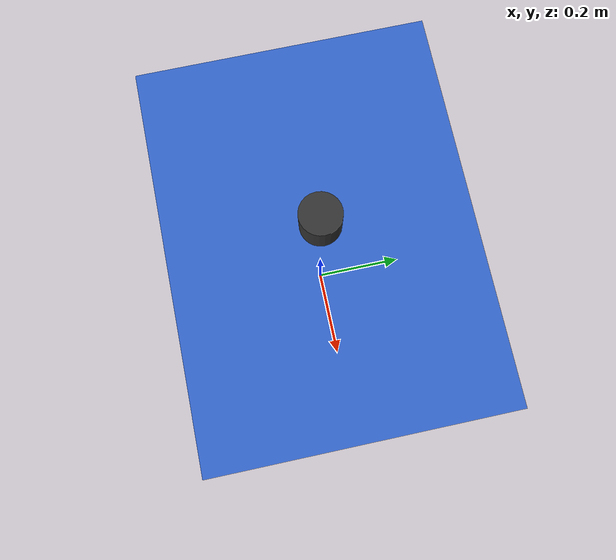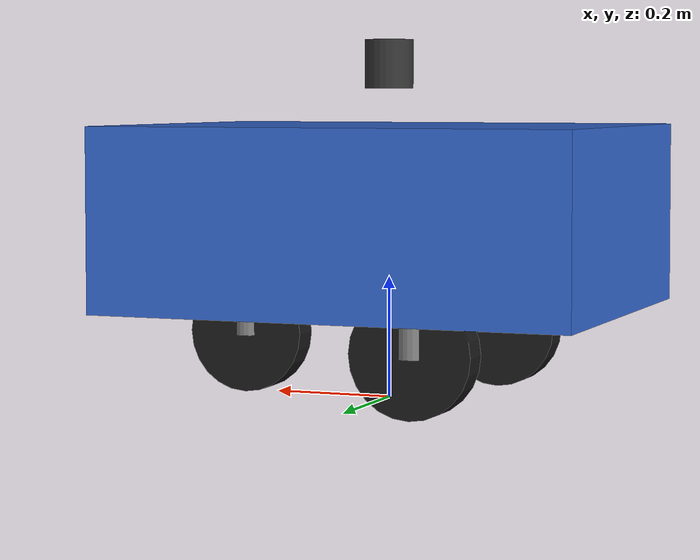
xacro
<?xml version="1.0"?>
<robot xmlns:xacro="http://www.ros.org/wiki/xacro" name="triple_steer_robot">

  <!-- ==================== Global Properties ==================== -->
  <xacro:property name="base_length" value="0.8" />
  <xacro:property name="base_width" value="0.6" />
  <xacro:property name="base_height" value="0.3" />
  <xacro:property name="base_mass" value="50.0" />
  <xacro:property name="wheel_radius" value="0.1" />
  <xacro:property name="wheel_width" value="0.05" />
  <xacro:property name="wheel_mass" value="2.0" />

  <!-- ==================== Includes ==================== -->
  <xacro:include filename="$(find triple_steer_robot)/urdf/robot_base.xacro" />
  <xacro:include filename="$(find triple_steer_robot)/urdf/sensors.xacro" />
  <xacro:include filename="$(find triple_steer_robot)/urdf/ros2_control.xacro" />

  <!-- ==================== Base Link ==================== -->
  <link name="base_footprint">
    <visual>
      <origin xyz="0 0 0" rpy="0 0 0" />
      <geometry>
        <box size="0.001 0.001 0.001" />
      </geometry>
    </visual>
  </link>

  <xacro:robot_base
    name="base_link"
    length="${base_length}"
    width="${base_width}"
    height="${base_height}"
    mass="${base_mass}"
    wheel_radius="${wheel_radius}"
    wheel_width="${wheel_width}"
    wheel_mass="${wheel_mass}" />

  <!-- base_link 中心离地高度 = wheel_radius + height/2 + ground_clearance(0.05) -->
  <xacro:property name="base_center_z" value="0.3" />

  <joint name="base_joint" type="fixed">
    <parent link="base_footprint" />
    <child link="base_link" />
    <origin xyz="0 0 ${base_center_z}" rpy="0 0 0" />
  </joint>

  <!-- ==================== Sensors ==================== -->
  <xacro:sensors parent="base_link" />

  <!-- ==================== ROS2 Control ==================== -->
  <xacro:ros2_control />

</robot>

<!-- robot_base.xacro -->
<robot xmlns:xacro="http://www.ros.org/wiki/xacro">

  <!--
    三舵轮底盘宏定义
    三个舵轮呈三角形/等边三角形分布，每个轮子可独立转向和驱动
  -->
  <xacro:macro name="robot_base" params="name length width height mass
                                          wheel_radius wheel_width wheel_mass">

    <link name="${name}">
      <visual>
        <origin xyz="0 0 0" rpy="0 0 0" />
        <geometry>
          <box size="${length} ${width} ${height}" />
        </geometry>
        <material name="blue">
          <color rgba="0.2 0.4 0.8 1.0" />
        </material>
      </visual>
      <collision>
        <origin xyz="0 0 0" rpy="0 0 0" />
        <geometry>
          <box size="${length} ${width} ${height}" />
        </geometry>
      </collision>
      <inertial>
        <origin xyz="0 0 0" rpy="0 0 0" />
        <mass value="${mass}" />
        <inertia
          ixx="${(1.0/12.0) * mass * (width*width + height*height)}"
          iyy="${(1.0/12.0) * mass * (length*length + height*height)}"
          izz="${(1.0/12.0) * mass * (length*length + width*width)}"
          ixy="0.0" ixz="0.0" iyz="0.0" />
      </inertial>
    </link>

    <!-- 等边三角形布局，中心到轮子距离 R=0.25m -->
    <xacro:property name="R" value="0.25" />
    <xacro:property name="sqrt3_2" value="0.86602540378" />

    <!-- steer_link 中心在 base_link 下方 0.18m，使其完全处于底盘下方 -->
    <xacro:property name="steer_z" value="-0.18" />

    <!-- ===== Front Steering Wheel ===== -->
    <xacro:steer_wheel
      name="front"
      parent="${name}"
      xyz="${R} 0 ${steer_z}"
      radius="${wheel_radius}"
      width="${wheel_width}"
      mass="${wheel_mass}"
    />

    <!-- ===== Left Steering Wheel ===== -->
    <xacro:steer_wheel
      name="left"
      parent="${name}"
      xyz="${-R/2} ${R*sqrt3_2} ${steer_z}"
      radius="${wheel_radius}"
      width="${wheel_width}"
      mass="${wheel_mass}"
    />

    <!-- ===== Right Steering Wheel ===== -->
    <xacro:steer_wheel
      name="right"
      parent="${name}"
      xyz="${-R/2} ${-R*sqrt3_2} ${steer_z}"
      radius="${wheel_radius}"
      width="${wheel_width}"
      mass="${wheel_mass}"
    />

    <!-- Gazebo colors -->
    <gazebo reference="${name}">
      <material>Gazebo/Blue</material>
    </gazebo>
    <gazebo reference="front_steer_link">
      <material>Gazebo/Orange</material>
    </gazebo>
    <gazebo reference="left_steer_link">
      <material>Gazebo/Yellow</material>
    </gazebo>
    <gazebo reference="right_steer_link">
      <material>Gazebo/Green</material>
    </gazebo>
    <gazebo reference="front_wheel_link">
      <material>Gazebo/Black</material>
    </gazebo>
    <gazebo reference="left_wheel_link">
      <material>Gazebo/Black</material>
    </gazebo>
    <gazebo reference="right_wheel_link">
      <material>Gazebo/Black</material>
    </gazebo>

  </xacro:macro>

  <!-- ==================== Steer Wheel Macro ==================== -->
  <xacro:macro name="steer_wheel" params="name parent xyz radius width mass">

    <!-- Steering link (rotation around Z) -->
    <link name="${name}_steer_link">
      <visual>
        <origin xyz="0 0 0" rpy="0 0 0" />
        <geometry>
          <cylinder radius="0.03" length="0.05" />
        </geometry>
        <material name="grey">
          <color rgba="0.5 0.5 0.5 1.0" />
        </material>
      </visual>
      <collision>
        <origin xyz="0 0 0" rpy="0 0 0" />
        <geometry>
          <cylinder radius="0.03" length="0.05" />
        </geometry>
      </collision>
      <inertial>
        <mass value="0.5" />
        <inertia ixx="0.0001" iyy="0.0001" izz="0.0001" ixy="0" ixz="0" iyz="0" />
      </inertial>
    </link>

    <joint name="${name}_steer_joint" type="revolute">
      <parent link="${parent}" />
      <child link="${name}_steer_link" />
      <origin xyz="${xyz}" rpy="0 0 0" />
      <axis xyz="0 0 1" />
      <limit lower="-1.57" upper="1.57" effort="100.0" velocity="3.0" />
      <dynamics damping="0.1" friction="0.0" />
    </joint>

    <!-- Wheel link -->
    <link name="${name}_wheel_link">
      <visual>
        <origin xyz="0 0 0" rpy="${pi/2} 0 0" />
        <geometry>
          <cylinder radius="${radius}" length="${width}" />
        </geometry>
        <material name="black">
          <color rgba="0.1 0.1 0.1 1.0" />
        </material>
      </visual>
      <collision>
        <origin xyz="0 0 0" rpy="${pi/2} 0 0" />
        <geometry>
          <cylinder radius="${radius}" length="${width}" />
        </geometry>
      </collision>
      <inertial>
        <mass value="${mass}" />
        <inertia
          ixx="${(1.0/12.0) * mass * (3*radius*radius + width*width)}"
          iyy="${(1.0/12.0) * mass * (3*radius*radius + width*width)}"
          izz="${0.5 * mass * radius * radius}"
          ixy="0.0" ixz="0.0" iyz="0.0" />
      </inertial>
    </link>

    <joint name="${name}_wheel_joint" type="continuous">
      <parent link="${name}_steer_link" />
      <child link="${name}_wheel_link" />
      <!-- steer_link 中心(base_footprint)≈0.12，wheel 中心需在地面上方 0.1，故向下 0.02 -->
      <origin xyz="0 0 ${-0.02}" rpy="0 0 0" />
      <axis xyz="0 1 0" />
      <limit effort="100.0" velocity="10.0" />
      <dynamics damping="0.01" friction="0.0" />
    </joint>

  </xacro:macro>

</robot>

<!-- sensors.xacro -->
<robot xmlns:xacro="http://www.ros.org/wiki/xacro">

  <!--
    传感器宏定义
    包含：3D LiDAR (Velodyne-like / Gazebo GPU Ray)
          IMU
          Camera (可选)
  -->
  <xacro:macro name="sensors" params="parent">

    <!-- ==================== 3D LiDAR ==================== -->
    <!-- 安装在底盘顶部中央，前向 -->
    <link name="lidar_3d_link">
      <visual>
        <origin xyz="0 0 0" rpy="0 0 0" />
        <geometry>
          <cylinder radius="0.04" length="0.08" />
        </geometry>
        <material name="dark_grey">
          <color rgba="0.2 0.2 0.2 1.0" />
        </material>
      </visual>
      <collision>
        <origin xyz="0 0 0" rpy="0 0 0" />
        <geometry>
          <cylinder radius="0.04" length="0.08" />
        </geometry>
      </collision>
      <inertial>
        <mass value="0.5" />
        <inertia ixx="0.0002" iyy="0.0002" izz="0.0001" ixy="0" ixz="0" iyz="0" />
      </inertial>
    </link>

    <joint name="lidar_3d_joint" type="fixed">
      <parent link="${parent}" />
      <child link="lidar_3d_link" />
      <origin xyz="0 0 0.25" rpy="0 0 0" />
    </joint>

    <!-- Gazebo 3D LiDAR Plugin (GPU Ray) -->
    <gazebo reference="lidar_3d_link">
      <material>Gazebo/DarkGrey</material>
      <sensor type="gpu_ray" name="lidar_3d_sensor">
        <pose>0 0 0 0 0 0</pose>
        <!-- 关闭 Gazebo 世界中射线可视化，避免遮挡本体；数据正常发布 -->
        <visualize>false</visualize>
        <update_rate>10.0</update_rate>
        <ray>
          <scan>
            <horizontal>
              <samples>1800</samples>
              <resolution>1</resolution>
              <min_angle>-${pi}</min_angle>
              <max_angle>${pi}</max_angle>
            </horizontal>
            <vertical>
              <samples>32</samples>
              <resolution>1</resolution>
              <min_angle>-${15.0*pi/180.0}</min_angle>
              <max_angle>${15.0*pi/180.0}</max_angle>
            </vertical>
          </scan>
          <range>
            <min>0.4</min>
            <max>100.0</max>
            <resolution>0.01</resolution>
          </range>
          <noise>
            <type>gaussian</type>
            <mean>0.0</mean>
            <stddev>0.01</stddev>
          </noise>
        </ray>
        <plugin name="lidar_3d_plugin" filename="libgazebo_ros_ray_sensor.so">
          <ros>
            <remapping>~/out:=/lidar_3d/points</remapping>
          </ros>
          <output_type>sensor_msgs/PointCloud2</output_type>
          <frame_name>lidar_3d_link</frame_name>
        </plugin>
      </sensor>
    </gazebo>

    <!-- ==================== IMU ==================== -->
    <link name="imu_link">
      <visual>
        <origin xyz="0 0 0" rpy="0 0 0" />
        <geometry>
          <box size="0.04 0.03 0.02" />
        </geometry>
        <material name="red">
          <color rgba="0.8 0.2 0.2 1.0" />
        </material>
      </visual>
      <inertial>
        <mass value="0.01" />
        <inertia ixx="1e-6" iyy="1e-6" izz="1e-6" ixy="0" ixz="0" iyz="0" />
      </inertial>
    </link>

    <joint name="imu_joint" type="fixed">
      <parent link="${parent}" />
      <child link="imu_link" />
      <origin xyz="0 0 0" rpy="0 0 0" />
    </joint>

    <gazebo reference="imu_link">
      <material>Gazebo/Red</material>
      <gravity>true</gravity>
      <sensor name="imu_sensor" type="imu">
        <always_on>true</always_on>
        <update_rate>100.0</update_rate>
        <visualize>true</visualize>
        <plugin name="imu_plugin" filename="libgazebo_ros_imu_sensor.so">
          <ros>
            <remapping>~/out:=/imu/data</remapping>
          </ros>
          <frame_name>imu_link</frame_name>
          <initial_orientation_as_reference>false</initial_orientation_as_reference>
        </plugin>
      </sensor>
    </gazebo>

  </xacro:macro>

</robot>
